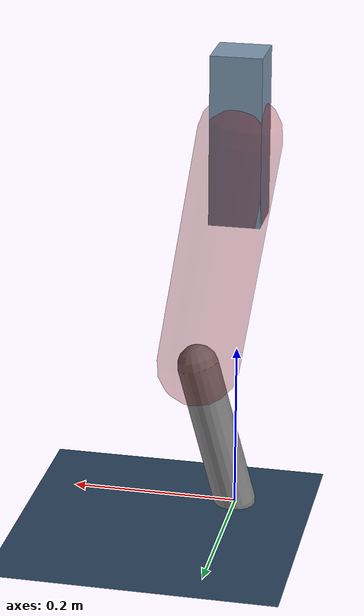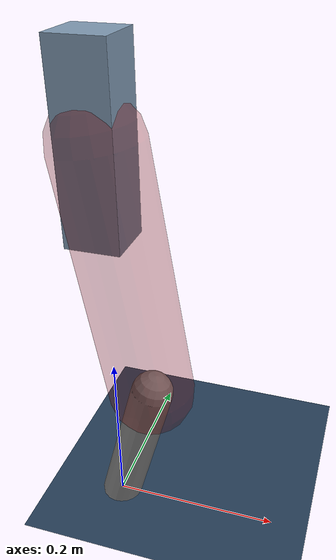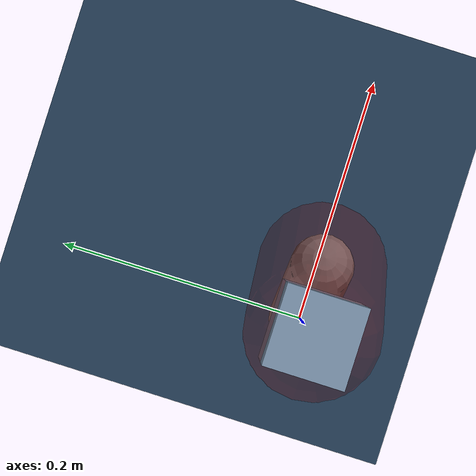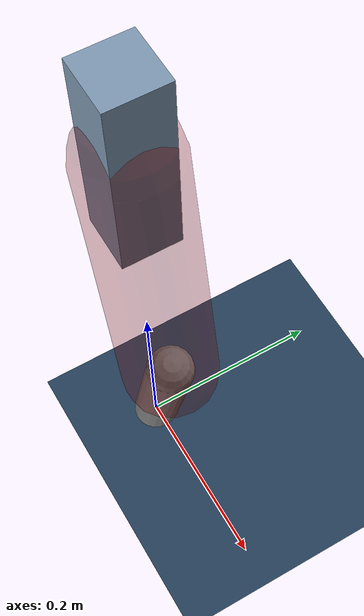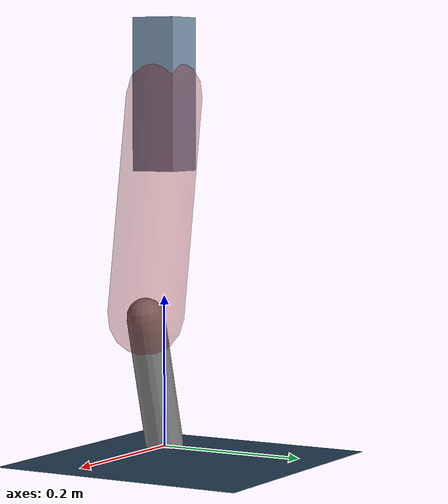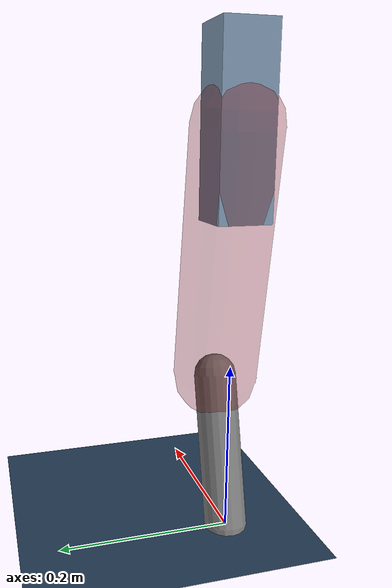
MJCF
<mujoco model="Hopper2D">
	<compiler inertiafromgeom="true" angle="radian" />
	<option timestep="0.001" integrator="implicit" cone="elliptic" solver="Newton" tolerance="1e-10" />

	<default>
		<geom contype="1" conaffinity="1" condim="3" friction="2 0.005 0.0001" solref="0.005 1" />
		<joint limited="true" damping="0.1" />
	</default>

	<asset>
		<texture name="skybox" type="skybox" builtin="gradient" rgb1=".4 .6 .8" rgb2="0 0 0" width="800" height="800" />
		<texture name="grid" type="2d" builtin="checker" rgb1=".1 .2 .3" rgb2=".2 .3 .4" width="300" height="300" mark="edge" markrgb=".2 .3 .4" />
		<material name="ground" texture="grid" texrepeat="1 1" texuniform="true" reflectance="0.1" />
		<material name="leg" rgba="0.5 0.6 0.7 1" />
	</asset>

	<worldbody>

		<geom name="floor" type="plane" size="5 5 0.25" material="ground" />

		<light directional="false" diffuse="0.8 0.8 0.8" specular="0.3 0.3 0.3" pos="0 0 2" dir="0 0 -1" />
		<light mode="targetbodycom" target="base" directional="false" diffuse="0.8 0.8 0.8" specular="0.3 0.3 0.3" pos="0 0 2" dir="0 0 -1" />

		<camera name="fixed" pos="0 -2 1" xyaxes="1 0 0 0 0 1" />
		<camera name="tracking" mode="trackcom" pos="0 -3 1" />

		<body name="root" pos="0 0 0.46423471037636166">
			<joint name="slide_x" type="slide" axis="1 0 0" range="-100 100" />
			<joint name="slide_z" type="slide" axis="0 0 1" range="0 10" />

			<body name="base" pos="0 0 0">
				<geom name="torso" type="box" size="0.03 0.03 0.1" mass="2.0300000000000002" material="leg" />

				<body name="link1" pos="0 0 0" euler="0 1.4094132297555357 0">
					<joint type="hinge" axis="0 -1 0" pos="0 0 0" name="hinge1" limited="true" range="-3.14 3.14" stiffness="0" damping="0.1" />
					<geom name="thigh" type="capsule" fromto="0 0 0 0.29268135520109523 0 0" size="0.05" rgba="0.5 0 0 0.3" mass="0.9690396590429572" />

					<body name="link2" pos="0.29268135520109523 0 0" euler="0 0.42340827011485127 0">
						<joint type="hinge" axis="0 -1 0" pos="0 0 0" name="hinge2" limited="true" range="-3.14 3.14" stiffness="0" damping="0.1" />
						<geom name="shank" type="capsule" fromto="0 0 0 0.18155335517526644 0 0" size="0.025" mass="0.3852426841402131" />

					</body>
				</body>
			</body>
		</body>
	</worldbody>

	<actuator>
		<motor name="torque1" joint="hinge1" ctrlrange="-54.315991437368616 54.315991437368616" ctrllimited="true" gear="1" />
		<motor name="torque2" joint="hinge2" ctrlrange="-70.59387570509644 70.59387570509644" ctrllimited="true" gear="1" />
	</actuator>
</mujoco>
